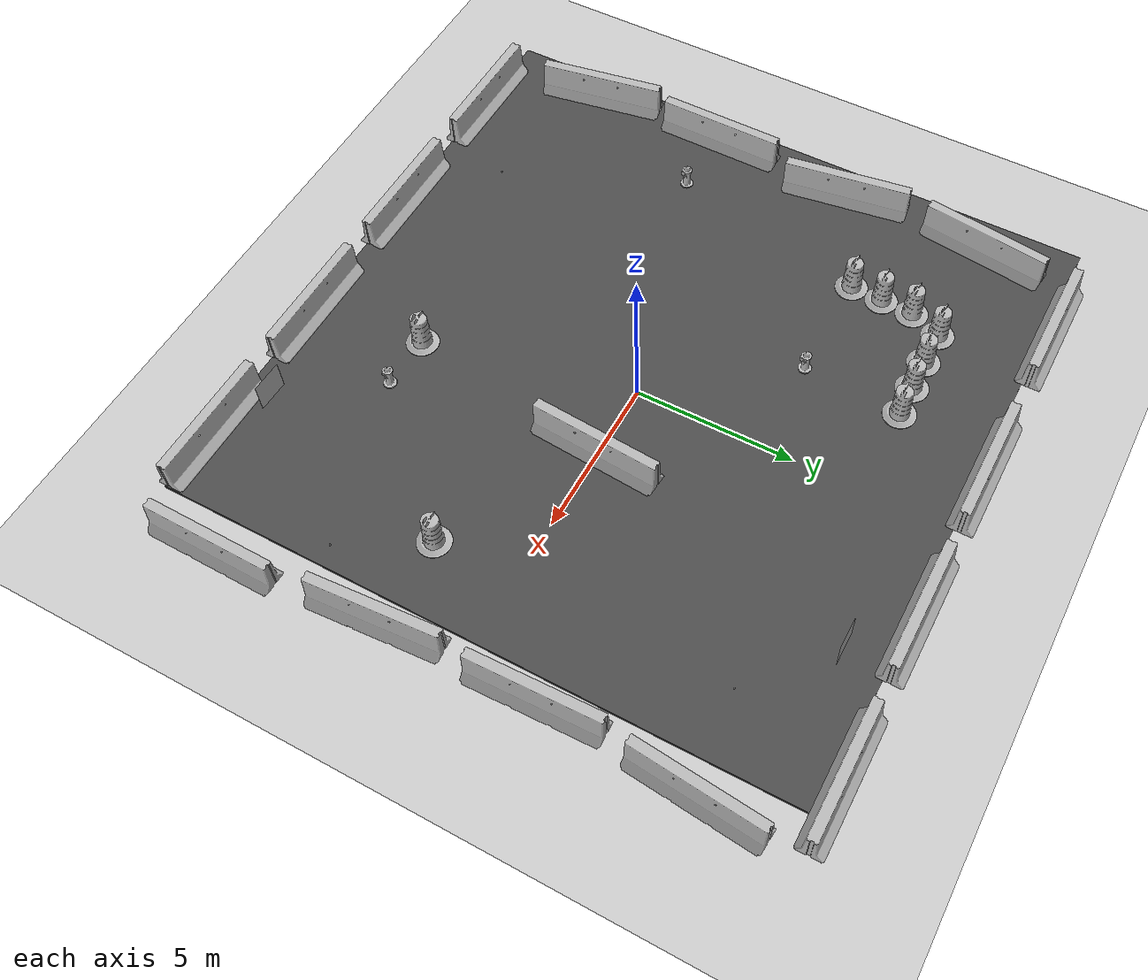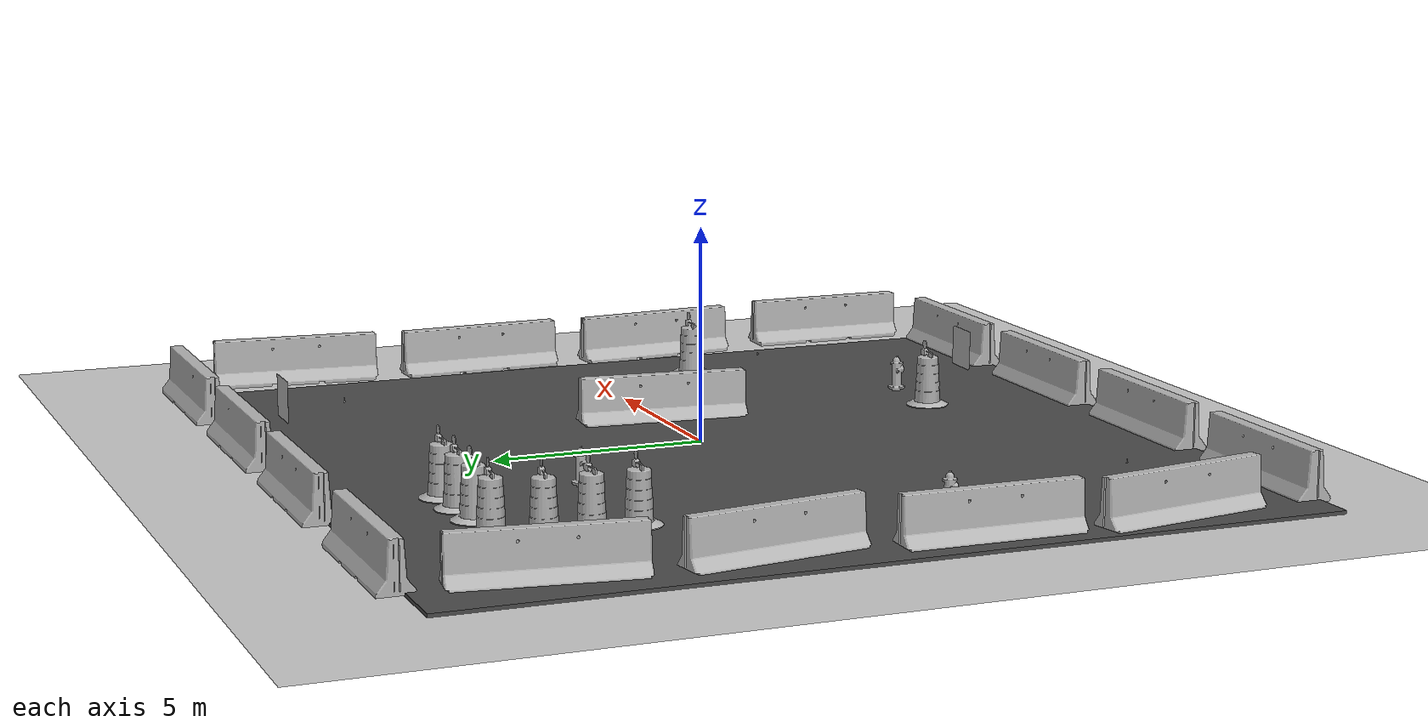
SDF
<sdf version="1.6">
 <world name="default">
  <light name="sun" type="directional">
   <pose>0 0 10 0 -0 0</pose>
   <diffuse>0.8 0.8 0.8 1</diffuse>
   <specular>0.2 0.2 0.2 1</specular>
   <attenuation>
    <range>1000</range>
    <constant>0.9</constant>
    <linear>0.01</linear>
    <quadratic>0.001</quadratic>
   </attenuation>
   <direction>-0.5 0.1 -0.9</direction>
  </light>
  <model name="ground_plane">
   <static>1</static>
   <link name="link">
    <collision name="collision">
     <geometry><plane><normal>0 0 1</normal><size>100 100</size></plane></geometry>
     <surface><friction><ode><mu>100</mu><mu2>50</mu2></ode></friction></surface>
    </collision>
    <visual name="visual">
     <cast_shadows>0</cast_shadows>
     <geometry><plane><normal>0 0 1</normal><size>100 100</size></plane></geometry>
     <material>
      <script><uri>file://media/materials/scripts/gazebo.material</uri><name>Gazebo/Grey</name></script>
     </material>
    </visual>
    <velocity_decay><linear>0</linear><angular>0</angular></velocity_decay>
   </link>
  </model>
  <physics name="default_physics" default="0" type="ode">
   <max_step_size>0.01</max_step_size>
   <real_time_factor>1</real_time_factor>
   <real_time_update_rate>100</real_time_update_rate>
  </physics>
  <scene><ambient>0.4 0.4 0.4 1</ambient><background>0.7 0.7 0.7 1</background><shadows>1</shadows></scene>
  <model name="jersey_barrier">
   <static>1</static>
   <link name="link">
    <visual name="visual">
     <geometry>
      <mesh><uri>model://jersey_barrier/meshes/jersey_barrier.dae</uri><scale>1 1 1</scale></mesh>
     </geometry>
    </visual>
    <collision name="upright">
     <pose>0 0 0.5715 0 -0 0</pose>
     <geometry><box><size>4.06542 0.3063 1.143</size></box></geometry>
    </collision>
    <collision name="base">
     <pose>0 0 0.032258 0 -0 0</pose>
     <geometry><box><size>4.06542 0.8107 0.064516</size></box></geometry>
    </collision>
    <collision name="base2">
     <pose>0 0 0.1 0 -0 0</pose>
     <geometry><box><size>4.06542 0.65 0.1</size></box></geometry>
    </collision>
    <collision name="base3">
     <pose>0 0 0.2 0 -0 0</pose>
     <geometry><box><size>4.06542 0.5 0.1</size></box></geometry>
    </collision>
    <collision name="left-angle">
     <pose>0 -0.224 0.2401 0.9 -0 0</pose>
     <geometry><box><size>4.06542 0.5 0.064516</size></box></geometry>
    </collision>
    <collision name="right-angle">
     <pose>0 0.224 0.2401 -0.9 0 0</pose>
     <geometry><box><size>4.06542 0.5 0.064516</size></box></geometry>
    </collision>
    <velocity_decay><linear>0</linear><angular>0</angular></velocity_decay>
   </link>
   <pose>-8 -10 0 0 -0 0</pose>
  </model>
  <model name="jersey_barrier_0">
   <static>1</static>
   <link name="link">
    <visual name="visual">
     <geometry>
      <mesh><uri>model://jersey_barrier/meshes/jersey_barrier.dae</uri><scale>1 1 1</scale></mesh>
     </geometry>
    </visual>
    <collision name="upright">
     <pose>0 0 0.5715 0 -0 0</pose>
     <geometry><box><size>4.06542 0.3063 1.143</size></box></geometry>
    </collision>
    <collision name="base">
     <pose>0 0 0.032258 0 -0 0</pose>
     <geometry><box><size>4.06542 0.8107 0.064516</size></box></geometry>
    </collision>
    <collision name="base2">
     <pose>0 0 0.1 0 -0 0</pose>
     <geometry><box><size>4.06542 0.65 0.1</size></box></geometry>
    </collision>
    <collision name="base3">
     <pose>0 0 0.2 0 -0 0</pose>
     <geometry><box><size>4.06542 0.5 0.1</size></box></geometry>
    </collision>
    <collision name="left-angle">
     <pose>0 -0.224 0.2401 0.9 -0 0</pose>
     <geometry><box><size>4.06542 0.5 0.064516</size></box></geometry>
    </collision>
    <collision name="right-angle">
     <pose>0 0.224 0.2401 -0.9 0 0</pose>
     <geometry><box><size>4.06542 0.5 0.064516</size></box></geometry>
    </collision>
    <velocity_decay><linear>0</linear><angular>0</angular></velocity_decay>
   </link>
   <pose>-3 -10 0 0 -0 0</pose>
  </model>
  <model name="jersey_barrier_1">
   <static>1</static>
   <link name="link">
    <visual name="visual">
     <geometry>
      <mesh><uri>model://jersey_barrier/meshes/jersey_barrier.dae</uri><scale>1 1 1</scale></mesh>
     </geometry>
    </visual>
    <collision name="upright">
     <pose>0 0 0.5715 0 -0 0</pose>
     <geometry><box><size>4.06542 0.3063 1.143</size></box></geometry>
    </collision>
    <collision name="base">
     <pose>0 0 0.032258 0 -0 0</pose>
     <geometry><box><size>4.06542 0.8107 0.064516</size></box></geometry>
    </collision>
    <collision name="base2">
     <pose>0 0 0.1 0 -0 0</pose>
     <geometry><box><size>4.06542 0.65 0.1</size></box></geometry>
    </collision>
    <collision name="base3">
     <pose>0 0 0.2 0 -0 0</pose>
     <geometry><box><size>4.06542 0.5 0.1</size></box></geometry>
    </collision>
    <collision name="left-angle">
     <pose>0 -0.224 0.2401 0.9 -0 0</pose>
     <geometry><box><size>4.06542 0.5 0.064516</size></box></geometry>
    </collision>
    <collision name="right-angle">
     <pose>0 0.224 0.2401 -0.9 0 0</pose>
     <geometry><box><size>4.06542 0.5 0.064516</size></box></geometry>
    </collision>
    <velocity_decay><linear>0</linear><angular>0</angular></velocity_decay>
   </link>
   <pose>2 -10 0 0 -0 0</pose>
  </model>
  <model name="jersey_barrier_2">
   <static>1</static>
   <link name="link">
    <visual name="visual">
     <geometry>
      <mesh><uri>model://jersey_barrier/meshes/jersey_barrier.dae</uri><scale>1 1 1</scale></mesh>
     </geometry>
    </visual>
    <collision name="upright">
     <pose>0 0 0.5715 0 -0 0</pose>
     <geometry><box><size>4.06542 0.3063 1.143</size></box></geometry>
    </collision>
    <collision name="base">
     <pose>0 0 0.032258 0 -0 0</pose>
     <geometry><box><size>4.06542 0.8107 0.064516</size></box></geometry>
    </collision>
    <collision name="base2">
     <pose>0 0 0.1 0 -0 0</pose>
     <geometry><box><size>4.06542 0.65 0.1</size></box></geometry>
    </collision>
    <collision name="base3">
     <pose>0 0 0.2 0 -0 0</pose>
     <geometry><box><size>4.06542 0.5 0.1</size></box></geometry>
    </collision>
    <collision name="left-angle">
     <pose>0 -0.224 0.2401 0.9 -0 0</pose>
     <geometry><box><size>4.06542 0.5 0.064516</size></box></geometry>
    </collision>
    <collision name="right-angle">
     <pose>0 0.224 0.2401 -0.9 0 0</pose>
     <geometry><box><size>4.06542 0.5 0.064516</size></box></geometry>
    </collision>
    <velocity_decay><linear>0</linear><angular>0</angular></velocity_decay>
   </link>
   <pose>7 -10 0 0 -0 0</pose>
  </model>
  <model name="jersey_barrier_3">
   <static>1</static>
   <link name="link">
    <visual name="visual">
     <geometry>
      <mesh><uri>model://jersey_barrier/meshes/jersey_barrier.dae</uri><scale>1 1 1</scale></mesh>
     </geometry>
    </visual>
    <collision name="upright">
     <pose>0 0 0.5715 0 -0 0</pose>
     <geometry><box><size>4.06542 0.3063 1.143</size></box></geometry>
    </collision>
    <collision name="base">
     <pose>0 0 0.032258 0 -0 0</pose>
     <geometry><box><size>4.06542 0.8107 0.064516</size></box></geometry>
    </collision>
    <collision name="base2">
     <pose>0 0 0.1 0 -0 0</pose>
     <geometry><box><size>4.06542 0.65 0.1</size></box></geometry>
    </collision>
    <collision name="base3">
     <pose>0 0 0.2 0 -0 0</pose>
     <geometry><box><size>4.06542 0.5 0.1</size></box></geometry>
    </collision>
    <collision name="left-angle">
     <pose>0 -0.224 0.2401 0.9 -0 0</pose>
     <geometry><box><size>4.06542 0.5 0.064516</size></box></geometry>
    </collision>
    <collision name="right-angle">
     <pose>0 0.224 0.2401 -0.9 0 0</pose>
     <geometry><box><size>4.06542 0.5 0.064516</size></box></geometry>
    </collision>
    <velocity_decay><linear>0</linear><angular>0</angular></velocity_decay>
   </link>
   <pose>-7.50675 10 0 0 -0 0</pose>
  </model>
  <model name="jersey_barrier_4">
   <static>1</static>
   <link name="link">
    <visual name="visual">
     <geometry>
      <mesh><uri>model://jersey_barrier/meshes/jersey_barrier.dae</uri><scale>1 1 1</scale></mesh>
     </geometry>
    </visual>
    <collision name="upright">
     <pose>0 0 0.5715 0 -0 0</pose>
     <geometry><box><size>4.06542 0.3063 1.143</size></box></geometry>
    </collision>
    <collision name="base">
     <pose>0 0 0.032258 0 -0 0</pose>
     <geometry><box><size>4.06542 0.8107 0.064516</size></box></geometry>
    </collision>
    <collision name="base2">
     <pose>0 0 0.1 0 -0 0</pose>
     <geometry><box><size>4.06542 0.65 0.1</size></box></geometry>
    </collision>
    <collision name="base3">
     <pose>0 0 0.2 0 -0 0</pose>
     <geometry><box><size>4.06542 0.5 0.1</size></box></geometry>
    </collision>
    <collision name="left-angle">
     <pose>0 -0.224 0.2401 0.9 -0 0</pose>
     <geometry><box><size>4.06542 0.5 0.064516</size></box></geometry>
    </collision>
    <collision name="right-angle">
     <pose>0 0.224 0.2401 -0.9 0 0</pose>
     <geometry><box><size>4.06542 0.5 0.064516</size></box></geometry>
    </collision>
    <velocity_decay><linear>0</linear><angular>0</angular></velocity_decay>
   </link>
   <pose>-2 10 0 0 -0 0</pose>
  </model>
  <model name="jersey_barrier_5">
   <static>1</static>
   <link name="link">
    <visual name="visual">
     <geometry>
      <mesh><uri>model://jersey_barrier/meshes/jersey_barrier.dae</uri><scale>1 1 1</scale></mesh>
     </geometry>
    </visual>
    <collision name="upright">
     <pose>0 0 0.5715 0 -0 0</pose>
     <geometry><box><size>4.06542 0.3063 1.143</size></box></geometry>
    </collision>
    <collision name="base">
     <pose>0 0 0.032258 0 -0 0</pose>
     <geometry><box><size>4.06542 0.8107 0.064516</size></box></geometry>
    </collision>
    <collision name="base2">
     <pose>0 0 0.1 0 -0 0</pose>
     <geometry><box><size>4.06542 0.65 0.1</size></box></geometry>
    </collision>
    <collision name="base3">
     <pose>0 0 0.2 0 -0 0</pose>
     <geometry><box><size>4.06542 0.5 0.1</size></box></geometry>
    </collision>
    <collision name="left-angle">
     <pose>0 -0.224 0.2401 0.9 -0 0</pose>
     <geometry><box><size>4.06542 0.5 0.064516</size></box></geometry>
    </collision>
    <collision name="right-angle">
     <pose>0 0.224 0.2401 -0.9 0 0</pose>
     <geometry><box><size>4.06542 0.5 0.064516</size></box></geometry>
    </collision>
    <velocity_decay><linear>0</linear><angular>0</angular></velocity_decay>
   </link>
   <pose>3 10 0 0 -0 0</pose>
  </model>
  <model name="jersey_barrier_6">
   <static>1</static>
   <link name="link">
    <visual name="visual">
     <geometry>
      <mesh><uri>model://jersey_barrier/meshes/jersey_barrier.dae</uri><scale>1 1 1</scale></mesh>
     </geometry>
    </visual>
    <collision name="upright">
     <pose>0 0 0.5715 0 -0 0</pose>
     <geometry><box><size>4.06542 0.3063 1.143</size></box></geometry>
    </collision>
    <collision name="base">
     <pose>0 0 0.032258 0 -0 0</pose>
     <geometry><box><size>4.06542 0.8107 0.064516</size></box></geometry>
    </collision>
    <collision name="base2">
     <pose>0 0 0.1 0 -0 0</pose>
     <geometry><box><size>4.06542 0.65 0.1</size></box></geometry>
    </collision>
    <collision name="base3">
     <pose>0 0 0.2 0 -0 0</pose>
     <geometry><box><size>4.06542 0.5 0.1</size></box></geometry>
    </collision>
    <collision name="left-angle">
     <pose>0 -0.224 0.2401 0.9 -0 0</pose>
     <geometry><box><size>4.06542 0.5 0.064516</size></box></geometry>
    </collision>
    <collision name="right-angle">
     <pose>0 0.224 0.2401 -0.9 0 0</pose>
     <geometry><box><size>4.06542 0.5 0.064516</size></box></geometry>
    </collision>
    <velocity_decay><linear>0</linear><angular>0</angular></velocity_decay>
   </link>
   <pose>8 10 0 0 -0 0</pose>
  </model>
  <model name="jersey_barrier_7">
   <static>1</static>
   <link name="link">
    <visual name="visual">
     <geometry>
      <mesh><uri>model://jersey_barrier/meshes/jersey_barrier.dae</uri><scale>1 1 1</scale></mesh>
     </geometry>
    </visual>
    <collision name="upright">
     <pose>0 0 0.5715 0 -0 0</pose>
     <geometry><box><size>4.06542 0.3063 1.143</size></box></geometry>
    </collision>
    <collision name="base">
     <pose>0 0 0.032258 0 -0 0</pose>
     <geometry><box><size>4.06542 0.8107 0.064516</size></box></geometry>
    </collision>
    <collision name="base2">
     <pose>0 0 0.1 0 -0 0</pose>
     <geometry><box><size>4.06542 0.65 0.1</size></box></geometry>
    </collision>
    <collision name="base3">
     <pose>0 0 0.2 0 -0 0</pose>
     <geometry><box><size>4.06542 0.5 0.1</size></box></geometry>
    </collision>
    <collision name="left-angle">
     <pose>0 -0.224 0.2401 0.9 -0 0</pose>
     <geometry><box><size>4.06542 0.5 0.064516</size></box></geometry>
    </collision>
    <collision name="right-angle">
     <pose>0 0.224 0.2401 -0.9 0 0</pose>
     <geometry><box><size>4.06542 0.5 0.064516</size></box></geometry>
    </collision>
    <velocity_decay><linear>0</linear><angular>0</angular></velocity_decay>
   </link>
   <pose>9.74902 -2.57759 0 0 -0 1.64</pose>
  </model>
  <model name="jersey_barrier_8">
   <static>1</static>
   <link name="link">
    <visual name="visual">
     <geometry>
      <mesh><uri>model://jersey_barrier/meshes/jersey_barrier.dae</uri><scale>1 1 1</scale></mesh>
     </geometry>
    </visual>
    <collision name="upright">
     <pose>0 0 0.5715 0 -0 0</pose>
     <geometry><box><size>4.06542 0.3063 1.143</size></box></geometry>
    </collision>
    <collision name="base">
     <pose>0 0 0.032258 0 -0 0</pose>
     <geometry><box><size>4.06542 0.8107 0.064516</size></box></geometry>
    </collision>
    <collision name="base2">
     <pose>0 0 0.1 0 -0 0</pose>
     <geometry><box><size>4.06542 0.65 0.1</size></box></geometry>
    </collision>
    <collision name="base3">
     <pose>0 0 0.2 0 -0 0</pose>
     <geometry><box><size>4.06542 0.5 0.1</size></box></geometry>
    </collision>
    <collision name="left-angle">
     <pose>0 -0.224 0.2401 0.9 -0 0</pose>
     <geometry><box><size>4.06542 0.5 0.064516</size></box></geometry>
    </collision>
    <collision name="right-angle">
     <pose>0 0.224 0.2401 -0.9 0 0</pose>
     <geometry><box><size>4.06542 0.5 0.064516</size></box></geometry>
    </collision>
    <velocity_decay><linear>0</linear><angular>0</angular></velocity_decay>
   </link>
   <pose>9.70141 2.24369 0 0 -0 1.6</pose>
  </model>
  <model name="jersey_barrier_9">
   <static>1</static>
   <link name="link">
    <visual name="visual">
     <geometry>
      <mesh><uri>model://jersey_barrier/meshes/jersey_barrier.dae</uri><scale>1 1 1</scale></mesh>
     </geometry>
    </visual>
    <collision name="upright">
     <pose>0 0 0.5715 0 -0 0</pose>
     <geometry><box><size>4.06542 0.3063 1.143</size></box></geometry>
    </collision>
    <collision name="base">
     <pose>0 0 0.032258 0 -0 0</pose>
     <geometry><box><size>4.06542 0.8107 0.064516</size></box></geometry>
    </collision>
    <collision name="base2">
     <pose>0 0 0.1 0 -0 0</pose>
     <geometry><box><size>4.06542 0.65 0.1</size></box></geometry>
    </collision>
    <collision name="base3">
     <pose>0 0 0.2 0 -0 0</pose>
     <geometry><box><size>4.06542 0.5 0.1</size></box></geometry>
    </collision>
    <collision name="left-angle">
     <pose>0 -0.224 0.2401 0.9 -0 0</pose>
     <geometry><box><size>4.06542 0.5 0.064516</size></box></geometry>
    </collision>
    <collision name="right-angle">
     <pose>0 0.224 0.2401 -0.9 0 0</pose>
     <geometry><box><size>4.06542 0.5 0.064516</size></box></geometry>
    </collision>
    <velocity_decay><linear>0</linear><angular>0</angular></velocity_decay>
   </link>
   <pose>-10.0607 -6.69856 0 0 0 -1.4</pose>
  </model>
  <model name="jersey_barrier_10">
   <static>1</static>
   <link name="link">
    <visual name="visual">
     <geometry>
      <mesh><uri>model://jersey_barrier/meshes/jersey_barrier.dae</uri><scale>1 1 1</scale></mesh>
     </geometry>
    </visual>
    <collision name="upright">
     <pose>0 0 0.5715 0 -0 0</pose>
     <geometry><box><size>4.06542 0.3063 1.143</size></box></geometry>
    </collision>
    <collision name="base">
     <pose>0 0 0.032258 0 -0 0</pose>
     <geometry><box><size>4.06542 0.8107 0.064516</size></box></geometry>
    </collision>
    <collision name="base2">
     <pose>0 0 0.1 0 -0 0</pose>
     <geometry><box><size>4.06542 0.65 0.1</size></box></geometry>
    </collision>
    <collision name="base3">
     <pose>0 0 0.2 0 -0 0</pose>
     <geometry><box><size>4.06542 0.5 0.1</size></box></geometry>
    </collision>
    <collision name="left-angle">
     <pose>0 -0.224 0.2401 0.9 -0 0</pose>
     <geometry><box><size>4.06542 0.5 0.064516</size></box></geometry>
    </collision>
    <collision name="right-angle">
     <pose>0 0.224 0.2401 -0.9 0 0</pose>
     <geometry><box><size>4.06542 0.5 0.064516</size></box></geometry>
    </collision>
    <velocity_decay><linear>0</linear><angular>0</angular></velocity_decay>
   </link>
   <pose>-10.0774 -2.27159 0 0 -0 1.56</pose>
  </model>
  <model name="jersey_barrier_11">
   <static>1</static>
   <link name="link">
    <visual name="visual">
     <geometry>
      <mesh><uri>model://jersey_barrier/meshes/jersey_barrier.dae</uri><scale>1 1 1</scale></mesh>
     </geometry>
    </visual>
    <collision name="upright">
     <pose>0 0 0.5715 0 -0 0</pose>
     <geometry><box><size>4.06542 0.3063 1.143</size></box></geometry>
    </collision>
    <collision name="base">
     <pose>0 0 0.032258 0 -0 0</pose>
     <geometry><box><size>4.06542 0.8107 0.064516</size></box></geometry>
    </collision>
    <collision name="base2">
     <pose>0 0 0.1 0 -0 0</pose>
     <geometry><box><size>4.06542 0.65 0.1</size></box></geometry>
    </collision>
    <collision name="base3">
     <pose>0 0 0.2 0 -0 0</pose>
     <geometry><box><size>4.06542 0.5 0.1</size></box></geometry>
    </collision>
    <collision name="left-angle">
     <pose>0 -0.224 0.2401 0.9 -0 0</pose>
     <geometry><box><size>4.06542 0.5 0.064516</size></box></geometry>
    </collision>
    <collision name="right-angle">
     <pose>0 0.224 0.2401 -0.9 0 0</pose>
     <geometry><box><size>4.06542 0.5 0.064516</size></box></geometry>
    </collision>
    <velocity_decay><linear>0</linear><angular>0</angular></velocity_decay>
   </link>
   <pose>-9.77013 2.34791 0 0 -0 1.72</pose>
  </model>
  <model name="jersey_barrier_12">
   <static>1</static>
   <link name="link">
    <visual name="visual">
     <geometry>
      <mesh><uri>model://jersey_barrier/meshes/jersey_barrier.dae</uri><scale>1 1 1</scale></mesh>
     </geometry>
    </visual>
    <collision name="upright">
     <pose>0 0 0.5715 0 -0 0</pose>
     <geometry><box><size>4.06542 0.3063 1.143</size></box></geometry>
    </collision>
    <collision name="base">
     <pose>0 0 0.032258 0 -0 0</pose>
     <geometry><box><size>4.06542 0.8107 0.064516</size></box></geometry>
    </collision>
    <collision name="base2">
     <pose>0 0 0.1 0 -0 0</pose>
     <geometry><box><size>4.06542 0.65 0.1</size></box></geometry>
    </collision>
    <collision name="base3">
     <pose>0 0 0.2 0 -0 0</pose>
     <geometry><box><size>4.06542 0.5 0.1</size></box></geometry>
    </collision>
    <collision name="left-angle">
     <pose>0 -0.224 0.2401 0.9 -0 0</pose>
     <geometry><box><size>4.06542 0.5 0.064516</size></box></geometry>
    </collision>
    <collision name="right-angle">
     <pose>0 0.224 0.2401 -0.9 0 0</pose>
     <geometry><box><size>4.06542 0.5 0.064516</size></box></geometry>
    </collision>
    <velocity_decay><linear>0</linear><angular>0</angular></velocity_decay>
   </link>
   <pose>10.0879 -7.62159 0 0 -0 1.56</pose>
  </model>
  <model name="jersey_barrier_13">
   <static>1</static>
   <link name="link">
    <visual name="visual">
     <geometry>
      <mesh><uri>model://jersey_barrier/meshes/jersey_barrier.dae</uri><scale>1 1 1</scale></mesh>
     </geometry>
    </visual>
    <collision name="upright">
     <pose>0 0 0.5715 0 -0 0</pose>
     <geometry><box><size>4.06542 0.3063 1.143</size></box></geometry>
    </collision>
    <collision name="base">
     <pose>0 0 0.032258 0 -0 0</pose>
     <geometry><box><size>4.06542 0.8107 0.064516</size></box></geometry>
    </collision>
    <collision name="base2">
     <pose>0 0 0.1 0 -0 0</pose>
     <geometry><box><size>4.06542 0.65 0.1</size></box></geometry>
    </collision>
    <collision name="base3">
     <pose>0 0 0.2 0 -0 0</pose>
     <geometry><box><size>4.06542 0.5 0.1</size></box></geometry>
    </collision>
    <collision name="left-angle">
     <pose>0 -0.224 0.2401 0.9 -0 0</pose>
     <geometry><box><size>4.06542 0.5 0.064516</size></box></geometry>
    </collision>
    <collision name="right-angle">
     <pose>0 0.224 0.2401 -0.9 0 0</pose>
     <geometry><box><size>4.06542 0.5 0.064516</size></box></geometry>
    </collision>
    <velocity_decay><linear>0</linear><angular>0</angular></velocity_decay>
   </link>
   <pose>10 7 0 0 -0 1.48</pose>
  </model>
  <model name="jersey_barrier_14">
   <static>1</static>
   <link name="link">
    <visual name="visual">
     <geometry>
      <mesh><uri>model://jersey_barrier/meshes/jersey_barrier.dae</uri><scale>1 1 1</scale></mesh>
     </geometry>
    </visual>
    <collision name="upright">
     <pose>0 0 0.5715 0 -0 0</pose>
     <geometry><box><size>4.06542 0.3063 1.143</size></box></geometry>
    </collision>
    <collision name="base">
     <pose>0 0 0.032258 0 -0 0</pose>
     <geometry><box><size>4.06542 0.8107 0.064516</size></box></geometry>
    </collision>
    <collision name="base2">
     <pose>0 0 0.1 0 -0 0</pose>
     <geometry><box><size>4.06542 0.65 0.1</size></box></geometry>
    </collision>
    <collision name="base3">
     <pose>0 0 0.2 0 -0 0</pose>
     <geometry><box><size>4.06542 0.5 0.1</size></box></geometry>
    </collision>
    <collision name="left-angle">
     <pose>0 -0.224 0.2401 0.9 -0 0</pose>
     <geometry><box><size>4.06542 0.5 0.064516</size></box></geometry>
    </collision>
    <collision name="right-angle">
     <pose>0 0.224 0.2401 -0.9 0 0</pose>
     <geometry><box><size>4.06542 0.5 0.064516</size></box></geometry>
    </collision>
    <velocity_decay><linear>0</linear><angular>0</angular></velocity_decay>
   </link>
   <pose>-9.64482 7.05946 0 0 -0 1.44</pose>
  </model>
  <model name="fire_hydrant">
   <static>1</static>
   <link name="link">
    <collision name="collision">
     <geometry><mesh><uri>model://fire_hydrant/meshes/fire_hydrant.dae</uri><scale>1 1 1</scale></mesh></geometry>
    </collision>
    <visual name="visual">
     <geometry><mesh><uri>model://fire_hydrant/meshes/fire_hydrant.dae</uri><scale>1 1 1</scale></mesh></geometry>
    </visual>
    <velocity_decay><linear>0</linear><angular>0</angular></velocity_decay>
   </link>
   <pose>3.18024 -6.51118 0 0 -0 0</pose>
  </model>
  <model name="fire_hydrant_0">
   <static>1</static>
   <link name="link">
    <collision name="collision">
     <geometry><mesh><uri>model://fire_hydrant/meshes/fire_hydrant.dae</uri><scale>1 1 1</scale></mesh></geometry>
    </collision>
    <visual name="visual">
     <geometry><mesh><uri>model://fire_hydrant/meshes/fire_hydrant.dae</uri><scale>1 1 1</scale></mesh></geometry>
    </visual>
    <velocity_decay><linear>0</linear><angular>0</angular></velocity_decay>
   </link>
   <pose>-3 4 0 0 -0 0</pose>
  </model>
  <model name="fire_hydrant_1">
   <static>1</static>
   <link name="link">
    <collision name="collision">
     <geometry><mesh><uri>model://fire_hydrant/meshes/fire_hydrant.dae</uri><scale>1 1 1</scale></mesh></geometry>
    </collision>
    <visual name="visual">
     <geometry><mesh><uri>model://fire_hydrant/meshes/fire_hydrant.dae</uri><scale>1 1 1</scale></mesh></geometry>
    </visual>
    <velocity_decay><linear>0</linear><angular>0</angular></velocity_decay>
   </link>
   <pose>-7.90686 -2.41363 0 0 -0 0</pose>
  </model>
  <model name="jersey_barrier_15">
   <static>1</static>
   <link name="link">
    <visual name="visual">
     <geometry>
      <mesh><uri>model://jersey_barrier/meshes/jersey_barrier.dae</uri><scale>1 1 1</scale></mesh>
     </geometry>
    </visual>
    <collision name="upright">
     <pose>0 0 0.5715 0 -0 0</pose>
     <geometry><box><size>4.06542 0.3063 1.143</size></box></geometry>
    </collision>
    <collision name="base">
     <pose>0 0 0.032258 0 -0 0</pose>
     <geometry><box><size>4.06542 0.8107 0.064516</size></box></geometry>
    </collision>
    <collision name="base2">
     <pose>0 0 0.1 0 -0 0</pose>
     <geometry><box><size>4.06542 0.65 0.1</size></box></geometry>
    </collision>
    <collision name="base3">
     <pose>0 0 0.2 0 -0 0</pose>
     <geometry><box><size>4.06542 0.5 0.1</size></box></geometry>
    </collision>
    <collision name="left-angle">
     <pose>0 -0.224 0.2401 0.9 -0 0</pose>
     <geometry><box><size>4.06542 0.5 0.064516</size></box></geometry>
    </collision>
    <collision name="right-angle">
     <pose>0 0.224 0.2401 -0.9 0 0</pose>
     <geometry><box><size>4.06542 0.5 0.064516</size></box></geometry>
    </collision>
    <velocity_decay><linear>0</linear><angular>0</angular></velocity_decay>
   </link>
   <pose>2.45495 0 0 0.002096 -0.005796 1.49737</pose>
  </model>
  <model name="Construction Cone">
   <link name="link">
    <collision name="collision">
     <geometry>
      <mesh><scale>1 1 1</scale><uri>model://construction_cone/meshes/construction_cone.dae</uri></mesh>
     </geometry>
    </collision>
    <visual name="visual">
     <geometry>
      <mesh><scale>1 1 1</scale><uri>model://construction_cone/meshes/construction_cone.dae</uri></mesh>
     </geometry>
    </visual>
    <velocity_decay><linear>0</linear><angular>0</angular></velocity_decay>
    <inertial>
     <inertia><ixx>1</ixx><ixy>0</ixy><ixz>0</ixz><iyy>1</iyy><iyz>0</iyz><izz>1</izz></inertia>
     <mass>1</mass>
    </inertial>
   </link>
   <pose>-5.59121 -8 0.050339 0.006031 -0.00942 -5.6e-05</pose>
   <static>0</static>
  </model>
  <model name="Construction Barrel">
   <link name="link">
    <inertial>
     <pose>0 0 0.4 0 -0 0</pose>
     <mass>500</mass>
     <inertia><ixx>51.2096</ixx><iyy>51.2096</iyy><izz>25</izz><ixy>0</ixy><ixz>0</ixz><iyz>0</iyz></inertia>
    </inertial>
    <collision name="collision">
     <geometry>
      <mesh><uri>model://construction_barrel/meshes/construction_barrel.dae</uri><scale>1 1 1</scale></mesh>
     </geometry>
    </collision>
    <visual name="visual">
     <geometry>
      <mesh><uri>model://construction_barrel/meshes/construction_barrel.dae</uri><scale>1 1 1</scale></mesh>
     </geometry>
    </visual>
    <velocity_decay><linear>0</linear><angular>0</angular></velocity_decay>
   </link>
   <pose>7.0001 -2.54622 0.04989 -0.000215 -0.000398 0.000215</pose>
   <static>0</static>
  </model>
  <model name="Construction Cone_0">
   <link name="link">
    <collision name="collision">
     <geometry>
      <mesh><scale>1 1 1</scale><uri>model://construction_cone/meshes/construction_cone.dae</uri></mesh>
     </geometry>
    </collision>
    <visual name="visual">
     <geometry>
      <mesh><scale>1 1 1</scale><uri>model://construction_cone/meshes/construction_cone.dae</uri></mesh>
     </geometry>
    </visual>
    <velocity_decay><linear>0</linear><angular>0</angular></velocity_decay>
    <inertial>
     <inertia><ixx>1</ixx><ixy>0</ixy><ixz>0</ixz><iyy>1</iyy><iyz>0</iyz><izz>1</izz></inertia>
     <mass>1</mass>
    </inertial>
   </link>
   <pose>6.99685 6.55732 0.049321 0.005557 -0.008209 -0.007042</pose>
   <static>0</static>
  </model>
  <model name="Construction Barrel_0">
   <link name="link">
    <inertial>
     <pose>0 0 0.4 0 -0 0</pose>
     <mass>500</mass>
     <inertia><ixx>51.2096</ixx><iyy>51.2096</iyy><izz>25</izz><ixy>0</ixy><ixz>0</ixz><iyz>0</iyz></inertia>
    </inertial>
    <collision name="collision">
     <geometry>
      <mesh><uri>model://construction_barrel/meshes/construction_barrel.dae</uri><scale>1 1 1</scale></mesh>
     </geometry>
    </collision>
    <visual name="visual">
     <geometry>
      <mesh><uri>model://construction_barrel/meshes/construction_barrel.dae</uri><scale>1 1 1</scale></mesh>
     </geometry>
    </visual>
    <velocity_decay><linear>0</linear><angular>0</angular></velocity_decay>
   </link>
   <pose>1.45182 -6.51115 0.049887 0.000462 -1.1e-05 -0.000152</pose>
   <static>0</static>
  </model>
  <model name="asphalt_plane">
   <static>1</static>
   <link name="link">
    <collision name="collision"><geometry><box><size>20 20 0.1</size></box></geometry></collision>
    <visual name="visual">
     <cast_shadows>0</cast_shadows>
     <geometry><box><size>20 20 0.1</size></box></geometry>
     <material>
      <script>
       <uri>model://asphalt_plane/materials/scripts</uri>
       <uri>model://asphalt_plane/materials/textures</uri>
       <name>vrc/asphalt</name>
      </script>
     </material>
    </visual>
    <velocity_decay><linear>0</linear><angular>0</angular></velocity_decay>
   </link>
   <pose>-0.9489 -0.162864 0 0 -0 0</pose>
  </model>
  <model name="Construction Barrel_1">
   <link name="link">
    <inertial>
     <pose>0 0 0.4 0 -0 0</pose>
     <mass>500</mass>
     <inertia><ixx>51.2096</ixx><iyy>51.2096</iyy><izz>25</izz><ixy>0</ixy><ixz>0</ixz><iyz>0</iyz></inertia>
    </inertial>
    <collision name="collision">
     <geometry>
      <mesh><uri>model://construction_barrel/meshes/construction_barrel.dae</uri><scale>1 1 1</scale></mesh>
     </geometry>
    </collision>
    <visual name="visual">
     <geometry>
      <mesh><uri>model://construction_barrel/meshes/construction_barrel.dae</uri><scale>1 1 1</scale></mesh>
     </geometry>
    </visual>
    <velocity_decay><linear>0</linear><angular>0</angular></velocity_decay>
   </link>
   <pose>-6.5046 3.98289 0.049904 -0.000188 -0.000368 -0.009578</pose>
   <static>0</static>
  </model>
  <model name="Construction Barrel_2">
   <link name="link">
    <inertial>
     <pose>0 0 0.4 0 -0 0</pose>
     <mass>500</mass>
     <inertia><ixx>51.2096</ixx><iyy>51.2096</iyy><izz>25</izz><ixy>0</ixy><ixz>0</ixz><iyz>0</iyz></inertia>
    </inertial>
    <collision name="collision">
     <geometry>
      <mesh><uri>model://construction_barrel/meshes/construction_barrel.dae</uri><scale>1 1 1</scale></mesh>
     </geometry>
    </collision>
    <visual name="visual">
     <geometry>
      <mesh><uri>model://construction_barrel/meshes/construction_barrel.dae</uri><scale>1 1 1</scale></mesh>
     </geometry>
    </visual>
    <velocity_decay><linear>0</linear><angular>0</angular></velocity_decay>
   </link>
   <pose>-6.45059 4.99654 0.049885 0.000466 -9e-06 0.064836</pose>
   <static>0</static>
  </model>
  <model name="Construction Barrel_3">
   <link name="link">
    <inertial>
     <pose>0 0 0.4 0 -0 0</pose>
     <mass>500</mass>
     <inertia><ixx>51.2096</ixx><iyy>51.2096</iyy><izz>25</izz><ixy>0</ixy><ixz>0</ixz><iyz>0</iyz></inertia>
    </inertial>
    <collision name="collision">
     <geometry>
      <mesh><uri>model://construction_barrel/meshes/construction_barrel.dae</uri><scale>1 1 1</scale></mesh>
     </geometry>
    </collision>
    <visual name="visual">
     <geometry>
      <mesh><uri>model://construction_barrel/meshes/construction_barrel.dae</uri><scale>1 1 1</scale></mesh>
     </geometry>
    </visual>
    <velocity_decay><linear>0</linear><angular>0</angular></velocity_decay>
   </link>
   <pose>-6.40168 6.01126 0.04988 0.000478 -6e-06 -0.120814</pose>
   <static>0</static>
  </model>
  <model name="Construction Barrel_4">
   <link name="link">
    <inertial>
     <pose>0 0 0.4 0 -0 0</pose>
     <mass>500</mass>
     <inertia><ixx>51.2096</ixx><iyy>51.2096</iyy><izz>25</izz><ixy>0</ixy><ixz>0</ixz><iyz>0</iyz></inertia>
    </inertial>
    <collision name="collision">
     <geometry>
      <mesh><uri>model://construction_barrel/meshes/construction_barrel.dae</uri><scale>1 1 1</scale></mesh>
     </geometry>
    </collision>
    <visual name="visual">
     <geometry>
      <mesh><uri>model://construction_barrel/meshes/construction_barrel.dae</uri><scale>1 1 1</scale></mesh>
     </geometry>
    </visual>
    <velocity_decay><linear>0</linear><angular>0</angular></velocity_decay>
   </link>
   <pose>-6.00608 7.00913 0.049899 -9.6e-05 -0.000411 -0.049465</pose>
   <static>0</static>
  </model>
  <model name="Construction Barrel_5">
   <link name="link">
    <inertial>
     <pose>0 0 0.4 0 -0 0</pose>
     <mass>500</mass>
     <inertia><ixx>51.2096</ixx><iyy>51.2096</iyy><izz>25</izz><ixy>0</ixy><ixz>0</ixz><iyz>0</iyz></inertia>
    </inertial>
    <collision name="collision">
     <geometry>
      <mesh><uri>model://construction_barrel/meshes/construction_barrel.dae</uri><scale>1 1 1</scale></mesh>
     </geometry>
    </collision>
    <visual name="visual">
     <geometry>
      <mesh><uri>model://construction_barrel/meshes/construction_barrel.dae</uri><scale>1 1 1</scale></mesh>
     </geometry>
    </visual>
    <velocity_decay><linear>0</linear><angular>0</angular></velocity_decay>
   </link>
   <pose>-4.87599 7.00763 0.049871 0.000429 0.000238 0.146688</pose>
   <static>0</static>
  </model>
  <model name="Construction Barrel_6">
   <link name="link">
    <inertial>
     <pose>0 0 0.4 0 -0 0</pose>
     <mass>500</mass>
     <inertia><ixx>51.2096</ixx><iyy>51.2096</iyy><izz>25</izz><ixy>0</ixy><ixz>0</ixz><iyz>0</iyz></inertia>
    </inertial>
    <collision name="collision">
     <geometry>
      <mesh><uri>model://construction_barrel/meshes/construction_barrel.dae</uri><scale>1 1 1</scale></mesh>
     </geometry>
    </collision>
    <visual name="visual">
     <geometry>
      <mesh><uri>model://construction_barrel/meshes/construction_barrel.dae</uri><scale>1 1 1</scale></mesh>
     </geometry>
    </visual>
    <velocity_decay><linear>0</linear><angular>0</angular></velocity_decay>
   </link>
   <pose>-3.86111 7.04828 0.049852 -0.000163 -0.000474 0.033235</pose>
   <static>0</static>
  </model>
  <model name="Construction Barrel_7">
   <link name="link">
    <inertial>
     <pose>0 0 0.4 0 -0 0</pose>
     <mass>500</mass>
     <inertia><ixx>51.2096</ixx><iyy>51.2096</iyy><izz>25</izz><ixy>0</ixy><ixz>0</ixz><iyz>0</iyz></inertia>
    </inertial>
    <collision name="collision">
     <geometry>
      <mesh><uri>model://construction_barrel/meshes/construction_barrel.dae</uri><scale>1 1 1</scale></mesh>
     </geometry>
    </collision>
    <visual name="visual">
     <geometry>
      <mesh><uri>model://construction_barrel/meshes/construction_barrel.dae</uri><scale>1 1 1</scale></mesh>
     </geometry>
    </visual>
    <velocity_decay><linear>0</linear><angular>0</angular></velocity_decay>
   </link>
   <pose>-2.84382 7.07549 0.049907 -0.000183 -0.000362 0.070571</pose>
   <static>0</static>
  </model>
  <model name="Construction Cone_1">
   <link name="link">
    <collision name="collision">
     <geometry>
      <mesh><scale>1 1 1</scale><uri>model://construction_cone/meshes/construction_cone.dae</uri></mesh>
     </geometry>
    </collision>
    <visual name="visual">
     <geometry>
      <mesh><scale>1 1 1</scale><uri>model://construction_cone/meshes/construction_cone.dae</uri></mesh>
     </geometry>
    </visual>
    <velocity_decay><linear>0</linear><angular>0</angular></velocity_decay>
    <inertial>
     <inertia><ixx>1</ixx><ixy>0</ixy><ixz>0</ixz><iyy>1</iyy><iyz>0</iyz><izz>1</izz></inertia>
     <mass>1</mass>
    </inertial>
   </link>
   <pose>8.42887 -5 0.050339 0.006031 -0.00942 -5.6e-05</pose>
   <static>0</static>
  </model>
  <gravity>0 0 -9.8</gravity>
  <magnetic_field>6e-06 2.3e-05 -4.2e-05</magnetic_field>
  <atmosphere type="adiabatic"/>
  <spherical_coordinates>
   <surface_model>EARTH_WGS84</surface_model>
   <latitude_deg>0</latitude_deg>
   <longitude_deg>0</longitude_deg>
   <elevation>0</elevation>
   <heading_deg>0</heading_deg>
  </spherical_coordinates>
  <model name="marker0_50cm_massless">
   <static>1</static>
   <link name="marker0">
    <gravity>0</gravity>
    <visual name="visual">
     <geometry><box><size>1 1 0.001</size></box></geometry>
     <material>
      <script>
       <uri>model://marker0_50cm_massless/materials/scripts</uri>
       <uri>model://marker0_50cm_massless/materials/textures</uri>
       <name>Aruco/marker0_50cm</name>
      </script>
     </material>
    </visual>
    <collision name="collision"><geometry><box><size>1 1 0.02</size></box></geometry></collision>
   </link>
   <pose>4.77345 8.62468 0.76883 1.5729 -0 0</pose>
  </model>
  <model name="marker4_50cm_massless">
   <static>1</static>
   <link name="marker4">
    <gravity>0</gravity>
    <visual name="visual">
     <geometry><box><size>1 1 0.001</size></box></geometry>
     <material>
      <script>
       <uri>model://marker4_50cm_massless/materials/scripts</uri>
       <uri>model://marker4_50cm_massless/materials/textures</uri>
       <name>Aruco/marker4_50cm</name>
      </script>
     </material>
    </visual>
    <collision name="collision"><geometry><box><size>1 1 0.001</size></box></geometry></collision>
   </link>
   <pose>5.1433 -9.30138 0.538673 1.54924 -0.000619 3.11288</pose>
  </model>
 </world>
</sdf>
